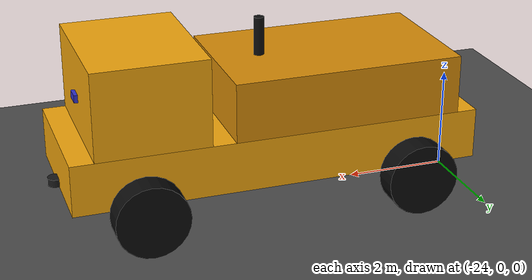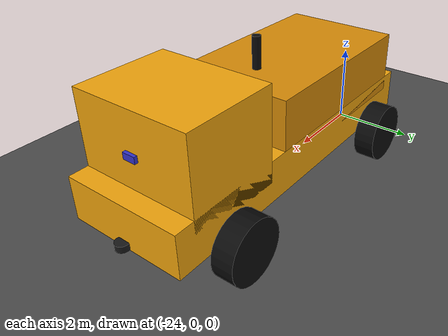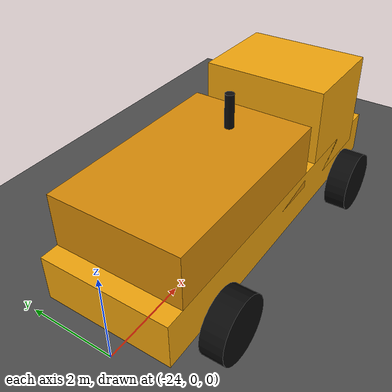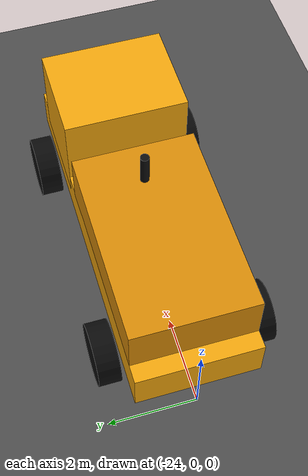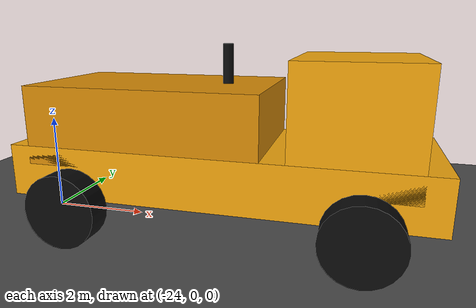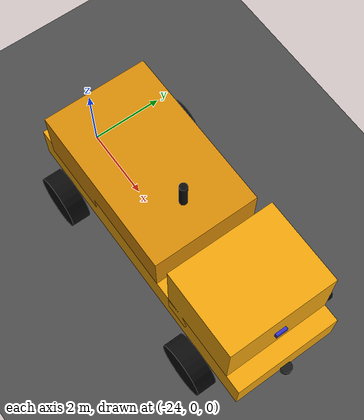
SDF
<?xml version="1.0"?>
<sdf version="1.9">
  <world name="sih_mine_test">
    <gravity>0 0 -9.81</gravity>
    <physics name="1ms" type="ode">
      <max_step_size>0.001</max_step_size>
      <real_time_factor>1</real_time_factor>
      <real_time_update_rate>1000</real_time_update_rate>
    </physics>

    <plugin filename="gz-sim-physics-system" name="gz::sim::systems::Physics"/>
    <plugin filename="gz-sim-user-commands-system" name="gz::sim::systems::UserCommands"/>
    <plugin filename="gz-sim-scene-broadcaster-system" name="gz::sim::systems::SceneBroadcaster"/>

    <scene>
      <ambient>0.45 0.45 0.45 1</ambient>
      <background>0.12 0.12 0.12 1</background>
      <shadows>true</shadows>
    </scene>

    <light name="sun" type="directional">
      <cast_shadows>true</cast_shadows>
      <pose>0 0 20 0.5 0.2 0</pose>
      <diffuse>0.8 0.8 0.8 1</diffuse>
      <specular>0.2 0.2 0.2 1</specular>
      <direction>-0.3 0.2 -1</direction>
    </light>

    <!-- Mine road: 60m x 12m, top surface at z=0 -->
    <model name="road">
      <pose>0 0 -0.15 0 0 0</pose>
      <static>true</static>
      <link name="link">
        <collision name="collision">
          <geometry><box><size>60 12 0.3</size></box></geometry>
          <surface>
            <friction><ode><mu>0.9</mu><mu2>0.9</mu2></ode></friction>
          </surface>
        </collision>
        <visual name="visual">
          <geometry><box><size>60 12 0.3</size></box></geometry>
          <material><ambient>0.25 0.25 0.25 1</ambient><diffuse>0.30 0.30 0.30 1</diffuse></material>
        </visual>
      </link>
    </model>

    <!-- HEMM dumper: spawned at x=-20, wheels should rest at z=0 (road surface) -->
    <include>
      <uri>model://hemm_dumper</uri>
      <name>HEMM_Dumper_01</name>
      <pose>-20 0 0 0 0 0</pose>
    </include>
  </world>
</sdf>

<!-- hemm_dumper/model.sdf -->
<sdf version="1.9">
  <model name="HEMM_Dumper_01">
    <pose>0 0 0 0 0 0</pose>
    <self_collide>false</self_collide>

    <link name="chassis">
      <pose>0 0 1.25 0 0 0</pose>
      <inertial>
        <mass>9000</mass>
        <inertia>
          <ixx>6630</ixx><iyy>48750</iyy><izz>53880</izz>
          <ixy>0</ixy><ixz>0</ixz><iyz>0</iyz>
        </inertia>
      </inertial>
      <collision name="collision">
        <geometry><box><size>8.0 2.8 1.0</size></box></geometry>
        <surface>
          <friction><ode><mu>0.8</mu><mu2>0.05</mu2></ode></friction>
        </surface>
      </collision>
      <visual name="visual">
        <geometry><box><size>8.0 2.8 1.0</size></box></geometry>
        <material>
          <ambient>0.95 0.65 0.05 1</ambient>
          <diffuse>0.95 0.65 0.05 1</diffuse>
        </material>
      </visual>

      <!-- IMU Sensor on Chassis -->
      <sensor name="imu" type="imu">
        <always_on>1</always_on>
        <update_rate>50</update_rate>
        <visualize>true</visualize>
        <topic>/imu</topic>
      </sensor>

      <!-- GPS / NavSat Sensor on Chassis -->
      <sensor name="gps" type="navsat">
        <always_on>1</always_on>
        <update_rate>5</update_rate>
        <topic>/gps</topic>
      </sensor>
    </link>

    <!-- Front cab (fixed to chassis) -->
    <link name="front_body">
      <pose>2.45 0 2.35 0 0 0</pose>
      <inertial>
        <mass>1800</mass>
        <inertia>
          <ixx>1902</ixx><iyy>1452</iyy><izz>1902</izz>
          <ixy>0</ixy><ixz>0</ixz><iyz>0</iyz>
        </inertia>
      </inertial>
      <collision name="collision">
        <geometry><box><size>2.2 2.8 2.2</size></box></geometry>
      </collision>
      <visual name="visual">
        <geometry><box><size>2.2 2.8 2.2</size></box></geometry>
        <material>
          <ambient>0.95 0.65 0.05 1</ambient>
          <diffuse>0.95 0.65 0.05 1</diffuse>
        </material>
      </visual>
    </link>

    <!-- Dump bed (fixed to chassis) -->
    <link name="dump_bed">
      <pose>-1.35 0 2.15 0 0 0</pose>
      <inertial>
        <mass>1400</mass>
        <inertia>
          <ixx>1177</ixx><iyy>2625</iyy><izz>3277</izz>
          <ixy>0</ixy><ixz>0</ixz><iyz>0</iyz>
        </inertia>
      </inertial>
      <collision name="collision">
        <geometry><box><size>4.5 2.8 1.5</size></box></geometry>
      </collision>
      <visual name="visual">
        <geometry><box><size>4.5 2.8 1.5</size></box></geometry>
        <material>
          <ambient>0.85 0.55 0.03 1</ambient>
          <diffuse>0.85 0.55 0.03 1</diffuse>
        </material>
      </visual>
    </link>

    <!-- Sensor mast (fixed to chassis) -->
    <link name="sensor_mast">
      <pose>0 0 3.15 0 0 0</pose>
      <inertial>
        <mass>80</mass>
        <inertia>
          <ixx>20</ixx><iyy>20</iyy><izz>20</izz>
          <ixy>0</ixy><ixz>0</ixz><iyz>0</iyz>
        </inertia>
      </inertial>
      <visual name="visual">
        <geometry><cylinder><radius>0.10</radius><length>1.0</length></cylinder></geometry>
        <material><ambient>0.05 0.05 0.05 1</ambient><diffuse>0.05 0.05 0.05 1</diffuse></material>
      </visual>
    </link>

    <!-- Left Front Wheel -->
    <link name="left_front_wheel">
      <pose>2.65 1.75 0.70 1.5707963 0 0</pose>
      <inertial>
        <mass>450</mass>
        <inertia>
          <ixx>65</ixx><iyy>65</iyy><izz>110</izz>
          <ixy>0</ixy><ixz>0</ixz><iyz>0</iyz>
        </inertia>
      </inertial>
      <collision name="collision">
        <geometry><cylinder><radius>0.70</radius><length>0.50</length></cylinder></geometry>
        <surface>
          <friction>
            <ode>
              <mu>1.5</mu>
              <mu2>0.05</mu2>
              <fdir1>1 0 0</fdir1>
            </ode>
          </friction>
          <contact>
            <ode>
              <kp>1000000</kp>
              <kd>100</kd>
              <min_depth>0.001</min_depth>
            </ode>
          </contact>
        </surface>
      </collision>
      <visual name="visual">
        <geometry><cylinder><radius>0.70</radius><length>0.50</length></cylinder></geometry>
        <material><ambient>0.04 0.04 0.04 1</ambient><diffuse>0.04 0.04 0.04 1</diffuse></material>
      </visual>
    </link>

    <!-- Right Front Wheel -->
    <link name="right_front_wheel">
      <pose>2.65 -1.75 0.70 1.5707963 0 0</pose>
      <inertial>
        <mass>450</mass>
        <inertia>
          <ixx>65</ixx><iyy>65</iyy><izz>110</izz>
          <ixy>0</ixy><ixz>0</ixz><iyz>0</iyz>
        </inertia>
      </inertial>
      <collision name="collision">
        <geometry><cylinder><radius>0.70</radius><length>0.50</length></cylinder></geometry>
        <surface>
          <friction>
            <ode>
              <mu>1.5</mu>
              <mu2>0.05</mu2>
              <fdir1>1 0 0</fdir1>
            </ode>
          </friction>
          <contact>
            <ode>
              <kp>1000000</kp>
              <kd>100</kd>
              <min_depth>0.001</min_depth>
            </ode>
          </contact>
        </surface>
      </collision>
      <visual name="visual">
        <geometry><cylinder><radius>0.70</radius><length>0.50</length></cylinder></geometry>
        <material><ambient>0.04 0.04 0.04 1</ambient><diffuse>0.04 0.04 0.04 1</diffuse></material>
      </visual>
    </link>

    <!-- Left Rear Wheel -->
    <link name="left_rear_wheel">
      <pose>-2.65 1.75 0.70 1.5707963 0 0</pose>
      <inertial>
        <mass>500</mass>
        <inertia>
          <ixx>72</ixx><iyy>72</iyy><izz>122</izz>
          <ixy>0</ixy><ixz>0</ixz><iyz>0</iyz>
        </inertia>
      </inertial>
      <collision name="collision">
        <geometry><cylinder><radius>0.70</radius><length>0.50</length></cylinder></geometry>
        <surface>
          <friction>
            <ode>
              <mu>1.5</mu>
              <mu2>0.05</mu2>
              <fdir1>1 0 0</fdir1>
            </ode>
          </friction>
          <contact>
            <ode>
              <kp>1000000</kp>
              <kd>100</kd>
              <min_depth>0.001</min_depth>
            </ode>
          </contact>
        </surface>
      </collision>
      <visual name="visual">
        <geometry><cylinder><radius>0.70</radius><length>0.50</length></cylinder></geometry>
        <material><ambient>0.04 0.04 0.04 1</ambient><diffuse>0.04 0.04 0.04 1</diffuse></material>
      </visual>
    </link>

    <!-- Right Rear Wheel -->
    <link name="right_rear_wheel">
      <pose>-2.65 -1.75 0.70 1.5707963 0 0</pose>
      <inertial>
        <mass>500</mass>
        <inertia>
          <ixx>72</ixx><iyy>72</iyy><izz>122</izz>
          <ixy>0</ixy><ixz>0</ixz><iyz>0</iyz>
        </inertia>
      </inertial>
      <collision name="collision">
        <geometry><cylinder><radius>0.70</radius><length>0.50</length></cylinder></geometry>
        <surface>
          <friction>
            <ode>
              <mu>1.5</mu>
              <mu2>0.05</mu2>
              <fdir1>1 0 0</fdir1>
            </ode>
          </friction>
          <contact>
            <ode>
              <kp>1000000</kp>
              <kd>100</kd>
              <min_depth>0.001</min_depth>
            </ode>
          </contact>
        </surface>
      </collision>
      <visual name="visual">
        <geometry><cylinder><radius>0.70</radius><length>0.50</length></cylinder></geometry>
        <material><ambient>0.04 0.04 0.04 1</ambient><diffuse>0.04 0.04 0.04 1</diffuse></material>
      </visual>
    </link>

    <joint name="front_left_wheel_joint" type="revolute">
      <parent>chassis</parent><child>left_front_wheel</child>
      <axis>
        <xyz expressed_in="__model__">0 1 0</xyz>
        <limit>
          <lower>-1e16</lower><upper>1e16</upper>
          <effort>30000</effort><velocity>20</velocity>
        </limit>
        <dynamics><damping>50</damping><friction>1.0</friction></dynamics>
      </axis>
    </joint>

    <joint name="front_right_wheel_joint" type="revolute">
      <parent>chassis</parent><child>right_front_wheel</child>
      <axis>
        <xyz expressed_in="__model__">0 1 0</xyz>
        <limit>
          <lower>-1e16</lower><upper>1e16</upper>
          <effort>30000</effort><velocity>20</velocity>
        </limit>
        <dynamics><damping>50</damping><friction>1.0</friction></dynamics>
      </axis>
    </joint>

    <joint name="rear_left_wheel_joint" type="revolute">
      <parent>chassis</parent><child>left_rear_wheel</child>
      <axis>
        <xyz expressed_in="__model__">0 1 0</xyz>
        <limit>
          <lower>-1e16</lower><upper>1e16</upper>
          <effort>30000</effort><velocity>20</velocity>
        </limit>
        <dynamics><damping>50</damping><friction>1.0</friction></dynamics>
      </axis>
    </joint>

    <joint name="rear_right_wheel_joint" type="revolute">
      <parent>chassis</parent><child>right_rear_wheel</child>
      <axis>
        <xyz expressed_in="__model__">0 1 0</xyz>
        <limit>
          <lower>-1e16</lower><upper>1e16</upper>
          <effort>30000</effort><velocity>20</velocity>
        </limit>
        <dynamics><damping>50</damping><friction>1.0</friction></dynamics>
      </axis>
    </joint>

    <!-- Fixed body joints -->
    <joint name="front_body_joint" type="fixed">
      <parent>chassis</parent><child>front_body</child>
    </joint>
    <joint name="dump_bed_joint" type="fixed">
      <parent>chassis</parent><child>dump_bed</child>
    </joint>
    <joint name="sensor_mast_joint" type="fixed">
      <parent>chassis</parent><child>sensor_mast</child>
    </joint>

    <plugin filename="gz-sim-diff-drive-system" name="gz::sim::systems::DiffDrive">
      <left_joint>front_left_wheel_joint</left_joint>
      <left_joint>rear_left_wheel_joint</left_joint>
      <right_joint>front_right_wheel_joint</right_joint>
      <right_joint>rear_right_wheel_joint</right_joint>
      <wheel_separation>3.50</wheel_separation>
      <wheel_radius>0.70</wheel_radius>
      <topic>/cmd_vel</topic>
      <odom_topic>/odom</odom_topic>
      <frame_id>odom</frame_id>
      <child_frame_id>base_link</child_frame_id>
      <odom_publish_frequency>30</odom_publish_frequency>
      <max_linear_acceleration>2.0</max_linear_acceleration>
      <min_linear_acceleration>-2.0</min_linear_acceleration>
      <max_angular_acceleration>1.5</max_angular_acceleration>
      <min_angular_acceleration>-1.5</min_angular_acceleration>
    </plugin>
    <!-- ==================== LiDAR SENSOR (360° Horizontal Scan) ==================== -->
    <link name="lidar_link">
      <pose>4.05 0 0.85 0 0 0</pose>
      <inertial>
        <mass>1.0</mass>
        <inertia>
          <ixx>0.001</ixx><iyy>0.001</iyy><izz>0.001</izz>
          <ixy>0</ixy><ixz>0</ixz><iyz>0</iyz>
        </inertia>
      </inertial>
      <visual name="visual">
        <geometry><cylinder><radius>0.15</radius><length>0.15</length></cylinder></geometry>
        <material><ambient>0.1 0.1 0.1 1</ambient><diffuse>0.1 0.1 0.1 1</diffuse></material>
      </visual>
      <sensor name="lidar" type="gpu_lidar">
        <topic>/scan</topic>
        <update_rate>10</update_rate>
        <ray>
          <scan>
            <horizontal>
              <samples>360</samples>
              <resolution>1</resolution>
              <min_angle>-3.14159265</min_angle>
              <max_angle>3.14159265</max_angle>
            </horizontal>
          </scan>
          <range>
            <min>0.1</min>
            <max>50.0</max>
            <resolution>0.05</resolution>
          </range>
        </ray>
        <always_on>true</always_on>
        <visualize>true</visualize>
      </sensor>
    </link>

    <joint name="lidar_joint" type="fixed">
      <parent>chassis</parent>
      <child>lidar_link</child>
    </joint>

    <!-- ==================== FRONT CAMERAS (RGB & Depth) ==================== -->
    <link name="camera_link">
      <pose>3.55 0 2.5 0 0 0</pose>
      <inertial>
        <mass>0.5</mass>
        <inertia>
          <ixx>0.0005</ixx><iyy>0.0005</iyy><izz>0.0005</izz>
          <ixy>0</ixy><ixz>0</ixz><iyz>0</iyz>
        </inertia>
      </inertial>
      <visual name="visual">
        <geometry><box><size>0.15 0.30 0.15</size></box></geometry>
        <material><ambient>0.2 0.2 0.8 1</ambient><diffuse>0.2 0.2 0.8 1</diffuse></material>
      </visual>

      <!-- Front-facing RGB Camera -->
      <sensor name="camera" type="camera">
        <topic>/camera/image_raw</topic>
        <update_rate>15</update_rate>
        <camera>
          <horizontal_fov>1.570796</horizontal_fov>
          <image>
            <width>640</width>
            <height>480</height>
            <format>R8G8B8</format>
          </image>
          <clip>
            <near>0.2</near>
            <far>100.0</far>
          </clip>
        </camera>
        <always_on>1</always_on>
        <visualize>true</visualize>
      </sensor>

      <!-- Front-facing Depth Camera -->
      <sensor name="depth_camera" type="depth_camera">
        <topic>/depth/image_raw</topic>
        <update_rate>10</update_rate>
        <camera>
          <horizontal_fov>1.396263</horizontal_fov>
          <image>
            <width>320</width>
            <height>240</height>
            <format>R_FLOAT32</format>
          </image>
          <clip>
            <near>0.5</near>
            <far>50.0</far>
          </clip>
        </camera>
        <always_on>1</always_on>
        <visualize>true</visualize>
      </sensor>
    </link>

    <joint name="camera_joint" type="fixed">
      <parent>chassis</parent>
      <child>camera_link</child>
    </joint>
  </model>
</sdf>
